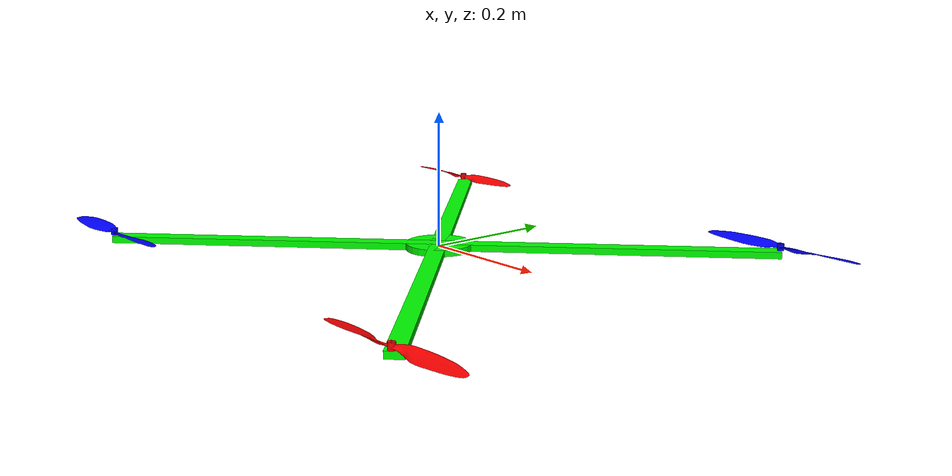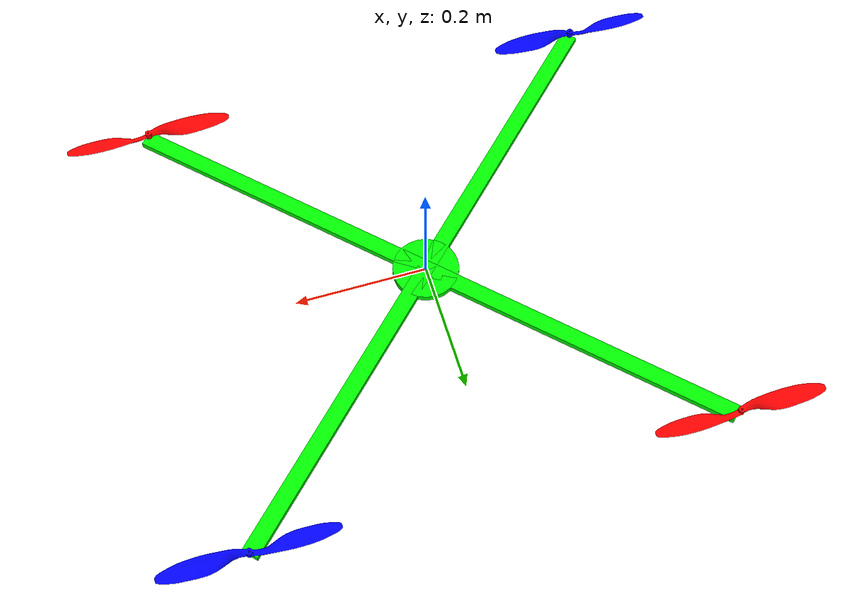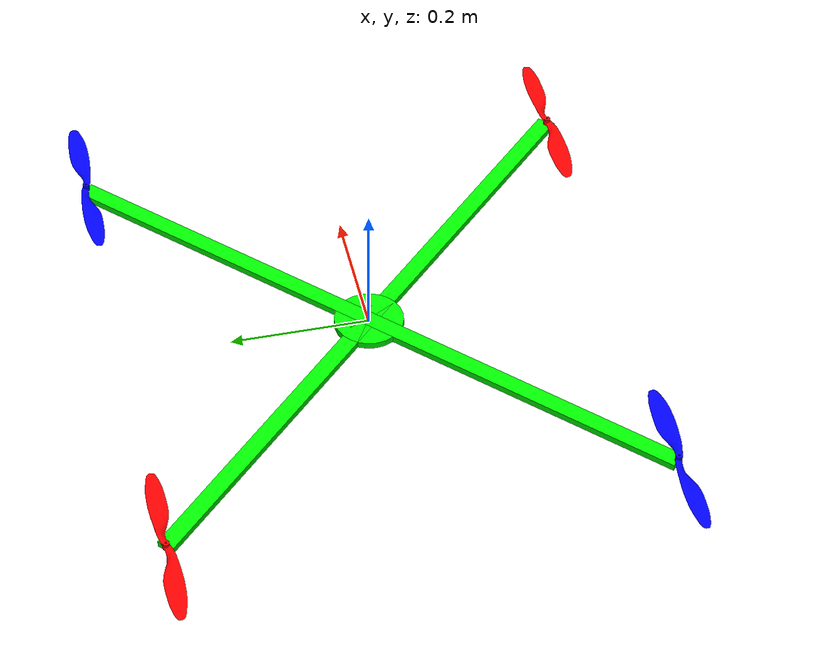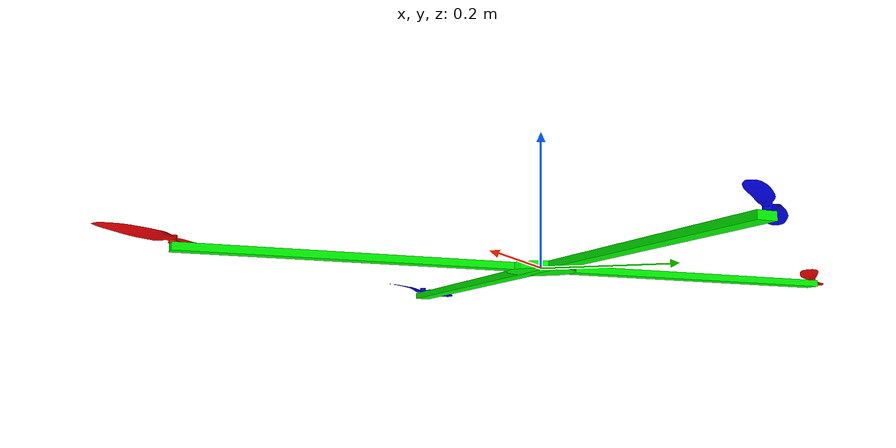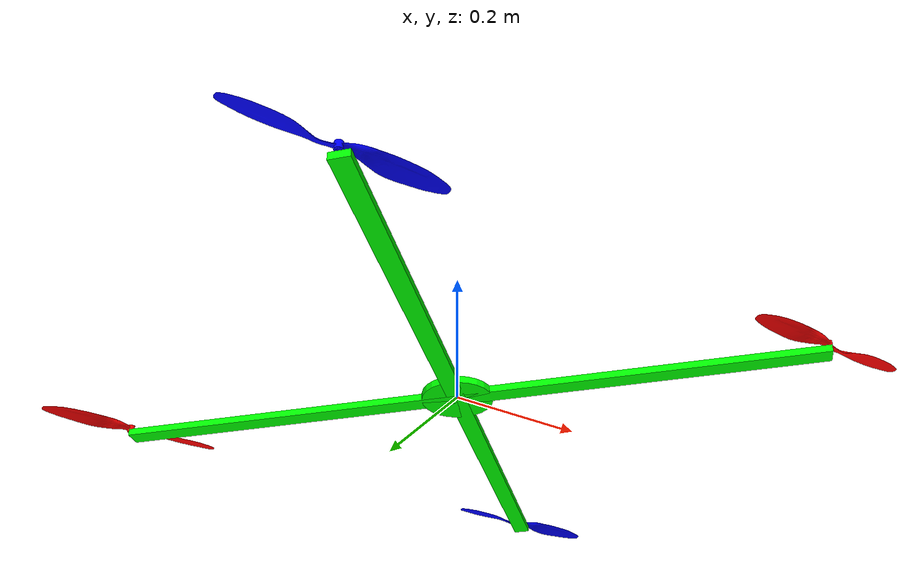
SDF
<sdf version='1.9'>
  <model name='quad_lift_drag'>
    <pose>0 0 0 0 0 0</pose>
    <self_collide>false</self_collide>
    <static>false</static>
    <link name="base_link">
      <inertial>
        <mass>0.96</mass>
        <inertia>
          <ixx>0.03</ixx>
          <ixy>0</ixy>
          <ixz>0</ixz>
          <iyy>0.03</iyy>
          <iyz>0</iyz>
          <izz>0.03</izz>
        </inertia>
      </inertial>
      <gravity>true</gravity>
      <velocity_decay />
      <visual name='base_link_visual'>
        <pose>0 0 0 0 0 0</pose>
        <geometry>
          <cylinder>
            <radius>0.05</radius>
            <length>0.01</length>
          </cylinder>
        </geometry>
        <material>
            <ambient>0 1 0 1</ambient>
            <diffuse>0 1 0 1</diffuse>
            <specular>0 1 0 1</specular>
        </material>
      </visual>
      <collision name='base_link_collision'>
        <pose>0 0 0 0 0 0</pose>
        <geometry>
          <cylinder>
            <radius>0.05</radius>
            <length>0.01</length>
          </cylinder>
        </geometry>
        <surface>
          <contact>
            <ode>
              <min_depth>0.001</min_depth>
              <max_vel>0</max_vel>
            </ode>
          </contact>
          <friction>
            <ode />
          </friction>
        </surface>
      </collision>
      <sensor name="imu_sensor" type="imu">
        <always_on>1</always_on>
        <update_rate>250</update_rate>
        <imu>
          <angular_velocity>
            <x>
              <noise type="gaussian">
                <mean>0</mean>
                <stddev>0.00018665</stddev>
                <dynamic_bias_stddev>3.8785e-05</dynamic_bias_stddev>
                <dynamic_bias_correlation_time>1000</dynamic_bias_correlation_time>
              </noise>
            </x>
            <y>
              <noise type="gaussian">
                <mean>0</mean>
                <stddev>0.00018665</stddev>
                <dynamic_bias_stddev>3.8785e-05</dynamic_bias_stddev>
                <dynamic_bias_correlation_time>1000</dynamic_bias_correlation_time>
              </noise>
            </y>
            <z>
              <noise type="gaussian">
                <mean>0</mean>
                <stddev>0.00018665</stddev>
                <dynamic_bias_stddev>3.8785e-05</dynamic_bias_stddev>
                <dynamic_bias_correlation_time>1000</dynamic_bias_correlation_time>
              </noise>
            </z>
          </angular_velocity>
          <linear_acceleration>
            <x>
              <noise type="gaussian">
                <mean>0</mean>
                <stddev>0.00186</stddev>
                <dynamic_bias_stddev>0.006</dynamic_bias_stddev>
                <dynamic_bias_correlation_time>300</dynamic_bias_correlation_time>
              </noise>
            </x>
            <y>
              <noise type="gaussian">
                <mean>0</mean>
                <stddev>0.00186</stddev>
                <dynamic_bias_stddev>0.006</dynamic_bias_stddev>
                <dynamic_bias_correlation_time>300</dynamic_bias_correlation_time>
              </noise>
            </y>
            <z>
              <noise type="gaussian">
                <mean>0</mean>
                <stddev>0.00186</stddev>
                <dynamic_bias_stddev>0.006</dynamic_bias_stddev>
                <dynamic_bias_correlation_time>300</dynamic_bias_correlation_time>
              </noise>
            </z>
          </linear_acceleration>
        </imu>
      </sensor>
      <sensor name="air_pressure_sensor" type="air_pressure">
        <always_on>1</always_on>
        <update_rate>50</update_rate>
        <air_pressure>
          <pressure>
            <noise type="gaussian">
              <mean>0</mean>
              <stddev>0.01</stddev>
            </noise>
          </pressure>
        </air_pressure>
      </sensor>
      <sensor name="navsat_sensor" type="navsat">
        <always_on>1</always_on>
        <update_rate>30</update_rate>
      </sensor>
    </link>
    <link name="arm_0">
      <gravity>true</gravity>
      <self_collide>false</self_collide>
      <pose>0 0 0 0 0 0.7853981633974483</pose>
      <inertial>
        <mass>1e-9</mass>
        <inertia>
          <ixx>1e-9</ixx>
          <iyy>1e-9</iyy>
          <izz>1e-9</izz>
        </inertia>
      </inertial>
      <visual name='arm_0_visual'>
        <pose>0 0 0 0 0 0</pose>
        <geometry>
          <box>
            <size>1.0 0.025 0.01</size>
          </box>
        </geometry>
        <material>
            <ambient>0 1 0 1</ambient>
            <diffuse>0 1 0 1</diffuse>
            <specular>0 1 0 1</specular>
        </material>
      </visual>
      <collision name='arm_0_collision'>
        <pose>0 0 0 0 0 0</pose>
        <geometry>
          <box>
            <size>1.0 0.025 0.01</size>
          </box>
        </geometry>
        <surface>
          <contact>
            <ode>
              <min_depth>0.001</min_depth>
              <max_vel>0</max_vel>
            </ode>
          </contact>
          <friction>
            <ode />
          </friction>
        </surface>
      </collision>
    </link>
    <joint name='arm_0_joint' type='fixed'>
      <child>arm_0</child>
      <parent>base_link</parent>
    </joint>
    <link name="arm_1">
      <gravity>true</gravity>
      <self_collide>false</self_collide>
      <pose>0 0 0 0 0 2.356194490192345</pose>
      <inertial>
        <mass>1e-9</mass>
        <inertia>
          <ixx>1e-9</ixx>
          <iyy>1e-9</iyy>
          <izz>1e-9</izz>
        </inertia>
      </inertial>
      <visual name='arm_1_visual'>
        <pose>0 0 0 0 0 0</pose>
        <geometry>
          <box>
            <size>1.0 0.025 0.01</size>
          </box>
        </geometry>
        <material>
            <ambient>0 1 0 1</ambient>
            <diffuse>0 1 0 1</diffuse>
            <specular>0 1 0 1</specular>
        </material>
      </visual>
      <collision name='arm_1_collision'>
        <pose>0 0 0 0 0 0</pose>
        <geometry>
          <box>
            <size>1.0 0.025 0.01</size>
          </box>
        </geometry>
        <surface>
          <contact>
            <ode>
              <min_depth>0.001</min_depth>
              <max_vel>0</max_vel>
            </ode>
          </contact>
          <friction>
            <ode />
          </friction>
        </surface>
      </collision>
    </link>
    <joint name='arm_1_joint' type='fixed'>
      <child>arm_1</child>
      <parent>base_link</parent>
    </joint>
    <link name="rotor_0">
      <gravity>true</gravity>
      <self_collide>false</self_collide>
      <pose>0.3535533905932738 0.35355339059327373 0.01 0 0 0</pose>
      <inertial>
        <mass>0.01</mass>
        <inertia>
          <ixx>1e-6</ixx>
          <iyy>1e-6</iyy>
          <izz>1e-6</izz>
        </inertia>
      </inertial>
      <visual name='rotor_0_visual'>
        <pose>0 0 0 0 0 0</pose>
        <geometry>
          <mesh>
            <scale>1 1 1</scale>
            <uri>model://my_custom_quad/meshes/prop_cw.dae</uri>
          </mesh>
        </geometry>
        <material>
            <ambient>0 0 1 1</ambient>
            <diffuse>0 0 1 1</diffuse>
            <specular>0 0 1 1</specular>
        </material>
      </visual>
      <collision name='rotor_0_collision'>
        <pose>0 0 0 0 0 0</pose>
        <geometry>
          <cylinder>
            <length>0.005</length>
            <radius>0.128</radius>
          </cylinder>
        </geometry>
        <surface>
          <contact>
            <ode />
          </contact>
          <friction>
            <ode />
          </friction>
        </surface>
      </collision>
    </link>
    <joint name='rotor_0_joint' type='revolute'>
      <child>rotor_0</child>
      <parent>base_link</parent>
      <axis>
        <xyz>0 0 1</xyz>
        <limit>
          <lower>-1e+16</lower>
          <upper>1e+16</upper>
        </limit>
        <dynamics>
          <spring_reference>0</spring_reference>
          <spring_stiffness>0</spring_stiffness>
        </dynamics>
      </axis>
    </joint>
    <plugin filename="gz-sim-multicopter-motor-model-system"
            name="gz::sim::systems::MulticopterMotorModel">
      <jointName>rotor_0_joint</jointName>
      <linkName>rotor_0</linkName>
      <turningDirection>cw</turningDirection>
      <timeConstantUp>0.0</timeConstantUp>
      <timeConstantDown>0.0</timeConstantDown>
      <maxRotVelocity>1000.0</maxRotVelocity>
      <motorConstant>30.0e-6</motorConstant>
      <momentConstant>0.01</momentConstant>
      <commandSubTopic>command/motor_speed</commandSubTopic>
      <motorNumber>0</motorNumber>
      <rotorDragCoefficient>0.0</rotorDragCoefficient>
      <rollingMomentCoefficient>0.0</rollingMomentCoefficient>
      <rotorVelocitySlowdownSim>10</rotorVelocitySlowdownSim>
      <motorType>velocity</motorType>
    </plugin>
    <link name="rotor_1">
      <gravity>true</gravity>
      <self_collide>false</self_collide>
      <pose>-0.35355339059327373 0.3535533905932738 0.01 0 0 0</pose>
      <inertial>
        <mass>0.01</mass>
        <inertia>
          <ixx>1e-6</ixx>
          <iyy>1e-6</iyy>
          <izz>1e-6</izz>
        </inertia>
      </inertial>
      <visual name='rotor_1_visual'>
        <pose>0 0 0 0 0 0</pose>
        <geometry>
          <mesh>
            <scale>1 1 1</scale>
            <uri>model://my_custom_quad/meshes/prop_ccw.dae</uri>
          </mesh>
        </geometry>
        <material>
            <ambient>1 0 0 1</ambient>
            <diffuse>1 0 0 1</diffuse>
            <specular>1 0 0 1</specular>
        </material>
      </visual>
      <collision name='rotor_1_collision'>
        <pose>0 0 0 0 0 0</pose>
        <geometry>
          <cylinder>
            <length>0.005</length>
            <radius>0.128</radius>
          </cylinder>
        </geometry>
        <surface>
          <contact>
            <ode />
          </contact>
          <friction>
            <ode />
          </friction>
        </surface>
      </collision>
    </link>
    <joint name='rotor_1_joint' type='revolute'>
      <child>rotor_1</child>
      <parent>base_link</parent>
      <axis>
        <xyz>0 0 1</xyz>
        <limit>
          <lower>-1e+16</lower>
          <upper>1e+16</upper>
        </limit>
        <dynamics>
          <spring_reference>0</spring_reference>
          <spring_stiffness>0</spring_stiffness>
        </dynamics>
      </axis>
    </joint>
    <plugin filename="gz-sim-multicopter-motor-model-system"
            name="gz::sim::systems::MulticopterMotorModel">
      <jointName>rotor_1_joint</jointName>
      <linkName>rotor_1</linkName>
      <turningDirection>ccw</turningDirection>
      <timeConstantUp>0.0</timeConstantUp>
      <timeConstantDown>0.0</timeConstantDown>
      <maxRotVelocity>1000.0</maxRotVelocity>
      <motorConstant>30.0e-6</motorConstant>
      <momentConstant>0.01</momentConstant>
      <commandSubTopic>command/motor_speed</commandSubTopic>
      <motorNumber>1</motorNumber>
      <rotorDragCoefficient>0.0</rotorDragCoefficient>
      <rollingMomentCoefficient>0.0</rollingMomentCoefficient>
      <rotorVelocitySlowdownSim>10</rotorVelocitySlowdownSim>
      <motorType>velocity</motorType>
    </plugin>
    <link name="rotor_2">
      <gravity>true</gravity>
      <self_collide>false</self_collide>
      <pose>-0.35355339059327384 -0.35355339059327373 0.01 0 0 0</pose>
      <inertial>
        <mass>0.01</mass>
        <inertia>
          <ixx>1e-6</ixx>
          <iyy>1e-6</iyy>
          <izz>1e-6</izz>
        </inertia>
      </inertial>
      <visual name='rotor_2_visual'>
        <pose>0 0 0 0 0 0</pose>
        <geometry>
          <mesh>
            <scale>1 1 1</scale>
            <uri>model://my_custom_quad/meshes/prop_cw.dae</uri>
          </mesh>
        </geometry>
        <material>
            <ambient>0 0 1 1</ambient>
            <diffuse>0 0 1 1</diffuse>
            <specular>0 0 1 1</specular>
        </material>
      </visual>
      <collision name='rotor_2_collision'>
        <pose>0 0 0 0 0 0</pose>
        <geometry>
          <cylinder>
            <length>0.005</length>
            <radius>0.128</radius>
          </cylinder>
        </geometry>
        <surface>
          <contact>
            <ode />
          </contact>
          <friction>
            <ode />
          </friction>
        </surface>
      </collision>
    </link>
    <joint name='rotor_2_joint' type='revolute'>
      <child>rotor_2</child>
      <parent>base_link</parent>
      <axis>
        <xyz>0 0 1</xyz>
        <limit>
          <lower>-1e+16</lower>
          <upper>1e+16</upper>
        </limit>
        <dynamics>
          <spring_reference>0</spring_reference>
          <spring_stiffness>0</spring_stiffness>
        </dynamics>
      </axis>
    </joint>
    <plugin filename="gz-sim-multicopter-motor-model-system"
            name="gz::sim::systems::MulticopterMotorModel">
      <jointName>rotor_2_joint</jointName>
      <linkName>rotor_2</linkName>
      <turningDirection>cw</turningDirection>
      <timeConstantUp>0.0</timeConstantUp>
      <timeConstantDown>0.0</timeConstantDown>
      <maxRotVelocity>1000.0</maxRotVelocity>
      <motorConstant>30.0e-6</motorConstant>
      <momentConstant>0.01</momentConstant>
      <commandSubTopic>command/motor_speed</commandSubTopic>
      <motorNumber>2</motorNumber>
      <rotorDragCoefficient>0.0</rotorDragCoefficient>
      <rollingMomentCoefficient>0.0</rollingMomentCoefficient>
      <rotorVelocitySlowdownSim>10</rotorVelocitySlowdownSim>
      <motorType>velocity</motorType>
    </plugin>
    <link name="rotor_3">
      <gravity>true</gravity>
      <self_collide>false</self_collide>
      <pose>0.3535533905932737 -0.35355339059327384 0.01 0 0 0</pose>
      <inertial>
        <mass>0.01</mass>
        <inertia>
          <ixx>1e-6</ixx>
          <iyy>1e-6</iyy>
          <izz>1e-6</izz>
        </inertia>
      </inertial>
      <visual name='rotor_3_visual'>
        <pose>0 0 0 0 0 0</pose>
        <geometry>
          <mesh>
            <scale>1 1 1</scale>
            <uri>model://my_custom_quad/meshes/prop_ccw.dae</uri>
          </mesh>
        </geometry>
        <material>
            <ambient>1 0 0 1</ambient>
            <diffuse>1 0 0 1</diffuse>
            <specular>1 0 0 1</specular>
        </material>
      </visual>
      <collision name='rotor_3_collision'>
        <pose>0 0 0 0 0 0</pose>
        <geometry>
          <cylinder>
            <length>0.005</length>
            <radius>0.128</radius>
          </cylinder>
        </geometry>
        <surface>
          <contact>
            <ode />
          </contact>
          <friction>
            <ode />
          </friction>
        </surface>
      </collision>
    </link>
    <joint name='rotor_3_joint' type='revolute'>
      <child>rotor_3</child>
      <parent>base_link</parent>
      <axis>
        <xyz>0 0 1</xyz>
        <limit>
          <lower>-1e+16</lower>
          <upper>1e+16</upper>
        </limit>
        <dynamics>
          <spring_reference>0</spring_reference>
          <spring_stiffness>0</spring_stiffness>
        </dynamics>
      </axis>
    </joint>
    <plugin filename="gz-sim-multicopter-motor-model-system"
            name="gz::sim::systems::MulticopterMotorModel">
      <jointName>rotor_3_joint</jointName>
      <linkName>rotor_3</linkName>
      <turningDirection>ccw</turningDirection>
      <timeConstantUp>0.0</timeConstantUp>
      <timeConstantDown>0.0</timeConstantDown>
      <maxRotVelocity>1000.0</maxRotVelocity>
      <motorConstant>30.0e-6</motorConstant>
      <momentConstant>0.01</momentConstant>
      <commandSubTopic>command/motor_speed</commandSubTopic>
      <motorNumber>3</motorNumber>
      <rotorDragCoefficient>0.0</rotorDragCoefficient>
      <rollingMomentCoefficient>0.0</rollingMomentCoefficient>
      <rotorVelocitySlowdownSim>10</rotorVelocitySlowdownSim>
      <motorType>velocity</motorType>
    </plugin>
    <plugin filename="lift_drag_system" name="lift_drag_system::LiftDragSystem">
      <liftCoefficient>0.00</liftCoefficient>
      <dragCoefficient>1.0</dragCoefficient>
    </plugin>
  </model>
</sdf>
